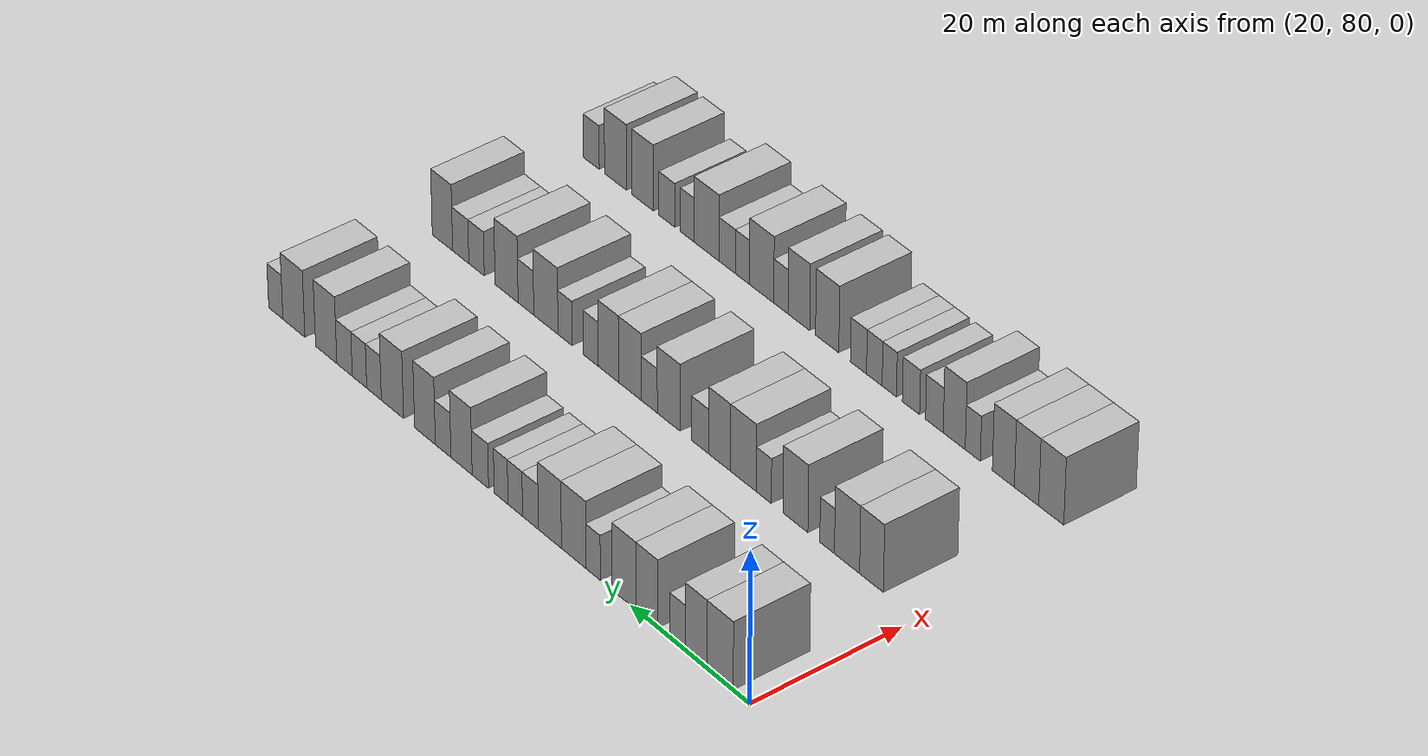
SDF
<sdf version="1.6">
 <world name="default">
  <model name="building_82">
   <static>1</static>
   <pose>25.0000 84.9619 0 0.000000 0.000000 0.000000</pose>
   <link name="link">
    <pose>0 0 4.50 0 0 0</pose>
    <collision name="collision"><geometry><box><size>10.0000 4.3811 9.0000</size></box></geometry></collision>
    <visual name="visual">
     <cast_shadows>0</cast_shadows>
     <geometry><box><size>10.0000 4.3811 9.0000</size></box></geometry>
     <material>
      <script>
       <uri>model://HANNAS_wall/materials/scripts</uri>
       <uri>model://HANNAS_wall/materials/textures</uri>
       <name>vrc/HANNAS_wall</name>
      </script>
     </material>
    </visual>
   </link>
  </model>
  <model name="building_83">
   <static>1</static>
   <pose>25.0000 88.9683 0 0.000000 0.000000 0.000000</pose>
   <link name="link">
    <pose>0 0 4.50 0 0 0</pose>
    <collision name="collision"><geometry><box><size>10.0000 3.6317 9.0000</size></box></geometry></collision>
    <visual name="visual">
     <cast_shadows>0</cast_shadows>
     <geometry><box><size>10.0000 3.6317 9.0000</size></box></geometry>
     <material>
      <script>
       <uri>model://HANNAS_wall/materials/scripts</uri>
       <uri>model://HANNAS_wall/materials/textures</uri>
       <name>vrc/HANNAS_wall</name>
      </script>
     </material>
    </visual>
   </link>
  </model>
  <model name="building_84">
   <static>1</static>
   <pose>25.0000 92.0663 0 0.000000 0.000000 0.000000</pose>
   <link name="link">
    <pose>0 0 3.00 0 0 0</pose>
    <collision name="collision"><geometry><box><size>10.0000 2.5644 6.0000</size></box></geometry></collision>
    <visual name="visual">
     <cast_shadows>0</cast_shadows>
     <geometry><box><size>10.0000 2.5644 6.0000</size></box></geometry>
     <material>
      <script>
       <uri>model://HANNAS_wall/materials/scripts</uri>
       <uri>model://HANNAS_wall/materials/textures</uri>
       <name>vrc/HANNAS_wall</name>
      </script>
     </material>
    </visual>
   </link>
  </model>
  <model name="building_85">
   <static>1</static>
   <pose>25.0000 97.2044 0 0.000000 0.000000 0.000000</pose>
   <link name="link">
    <pose>0 0 4.50 0 0 0</pose>
    <collision name="collision"><geometry><box><size>10.0000 3.7118 9.0000</size></box></geometry></collision>
    <visual name="visual">
     <cast_shadows>0</cast_shadows>
     <geometry><box><size>10.0000 3.7118 9.0000</size></box></geometry>
     <material>
      <script>
       <uri>model://HANNAS_wall/materials/scripts</uri>
       <uri>model://HANNAS_wall/materials/textures</uri>
       <name>vrc/HANNAS_wall</name>
      </script>
     </material>
    </visual>
   </link>
  </model>
  <model name="building_86">
   <static>1</static>
   <pose>25.0000 101.1151 0 0.000000 0.000000 0.000000</pose>
   <link name="link">
    <pose>0 0 4.50 0 0 0</pose>
    <collision name="collision"><geometry><box><size>10.0000 4.1097 9.0000</size></box></geometry></collision>
    <visual name="visual">
     <cast_shadows>0</cast_shadows>
     <geometry><box><size>10.0000 4.1097 9.0000</size></box></geometry>
     <material>
      <script>
       <uri>model://HANNAS_wall/materials/scripts</uri>
       <uri>model://HANNAS_wall/materials/textures</uri>
       <name>vrc/HANNAS_wall</name>
      </script>
     </material>
    </visual>
   </link>
  </model>
  <model name="building_87">
   <static>1</static>
   <pose>25.0000 106.3921 0 0.000000 0.000000 0.000000</pose>
   <link name="link">
    <pose>0 0 3.00 0 0 0</pose>
    <collision name="collision"><geometry><box><size>10.0000 2.4443 6.0000</size></box></geometry></collision>
    <visual name="visual">
     <cast_shadows>0</cast_shadows>
     <geometry><box><size>10.0000 2.4443 6.0000</size></box></geometry>
     <material>
      <script>
       <uri>model://HANNAS_wall/materials/scripts</uri>
       <uri>model://HANNAS_wall/materials/textures</uri>
       <name>vrc/HANNAS_wall</name>
      </script>
     </material>
    </visual>
   </link>
  </model>
  <model name="building_88">
   <static>1</static>
   <pose>25.0000 109.7553 0 0.000000 0.000000 0.000000</pose>
   <link name="link">
    <pose>0 0 4.50 0 0 0</pose>
    <collision name="collision"><geometry><box><size>10.0000 4.2820 9.0000</size></box></geometry></collision>
    <visual name="visual">
     <cast_shadows>0</cast_shadows>
     <geometry><box><size>10.0000 4.2820 9.0000</size></box></geometry>
     <material>
      <script>
       <uri>model://HANNAS_wall/materials/scripts</uri>
       <uri>model://HANNAS_wall/materials/textures</uri>
       <name>vrc/HANNAS_wall</name>
      </script>
     </material>
    </visual>
   </link>
  </model>
  <model name="building_89">
   <static>1</static>
   <pose>25.0000 113.9008 0 0.000000 0.000000 0.000000</pose>
   <link name="link">
    <pose>0 0 4.50 0 0 0</pose>
    <collision name="collision"><geometry><box><size>10.0000 4.0090 9.0000</size></box></geometry></collision>
    <visual name="visual">
     <cast_shadows>0</cast_shadows>
     <geometry><box><size>10.0000 4.0090 9.0000</size></box></geometry>
     <material>
      <script>
       <uri>model://HANNAS_wall/materials/scripts</uri>
       <uri>model://HANNAS_wall/materials/textures</uri>
       <name>vrc/HANNAS_wall</name>
      </script>
     </material>
    </visual>
   </link>
  </model>
  <model name="building_90">
   <static>1</static>
   <pose>25.0000 117.2914 0 0.000000 0.000000 0.000000</pose>
   <link name="link">
    <pose>0 0 3.00 0 0 0</pose>
    <collision name="collision"><geometry><box><size>10.0000 2.7720 6.0000</size></box></geometry></collision>
    <visual name="visual">
     <cast_shadows>0</cast_shadows>
     <geometry><box><size>10.0000 2.7720 6.0000</size></box></geometry>
     <material>
      <script>
       <uri>model://HANNAS_wall/materials/scripts</uri>
       <uri>model://HANNAS_wall/materials/textures</uri>
       <name>vrc/HANNAS_wall</name>
      </script>
     </material>
    </visual>
   </link>
  </model>
  <model name="building_91">
   <static>1</static>
   <pose>25.0000 119.9658 0 0.000000 0.000000 0.000000</pose>
   <link name="link">
    <pose>0 0 3.00 0 0 0</pose>
    <collision name="collision"><geometry><box><size>10.0000 2.5768 6.0000</size></box></geometry></collision>
    <visual name="visual">
     <cast_shadows>0</cast_shadows>
     <geometry><box><size>10.0000 2.5768 6.0000</size></box></geometry>
     <material>
      <script>
       <uri>model://HANNAS_wall/materials/scripts</uri>
       <uri>model://HANNAS_wall/materials/textures</uri>
       <name>vrc/HANNAS_wall</name>
      </script>
     </material>
    </visual>
   </link>
  </model>
  <model name="building_92">
   <static>1</static>
   <pose>25.0000 122.4704 0 0.000000 0.000000 0.000000</pose>
   <link name="link">
    <pose>0 0 3.00 0 0 0</pose>
    <collision name="collision"><geometry><box><size>10.0000 2.4324 6.0000</size></box></geometry></collision>
    <visual name="visual">
     <cast_shadows>0</cast_shadows>
     <geometry><box><size>10.0000 2.4324 6.0000</size></box></geometry>
     <material>
      <script>
       <uri>model://HANNAS_wall/materials/scripts</uri>
       <uri>model://HANNAS_wall/materials/textures</uri>
       <name>vrc/HANNAS_wall</name>
      </script>
     </material>
    </visual>
   </link>
  </model>
  <model name="building_93">
   <static>1</static>
   <pose>25.0000 126.1448 0 0.000000 0.000000 0.000000</pose>
   <link name="link">
    <pose>0 0 3.00 0 0 0</pose>
    <collision name="collision"><geometry><box><size>10.0000 2.9164 6.0000</size></box></geometry></collision>
    <visual name="visual">
     <cast_shadows>0</cast_shadows>
     <geometry><box><size>10.0000 2.9164 6.0000</size></box></geometry>
     <material>
      <script>
       <uri>model://HANNAS_wall/materials/scripts</uri>
       <uri>model://HANNAS_wall/materials/textures</uri>
       <name>vrc/HANNAS_wall</name>
      </script>
     </material>
    </visual>
   </link>
  </model>
  <model name="building_94">
   <static>1</static>
   <pose>25.0000 129.4947 0 0.000000 0.000000 0.000000</pose>
   <link name="link">
    <pose>0 0 4.50 0 0 0</pose>
    <collision name="collision"><geometry><box><size>10.0000 3.7833 9.0000</size></box></geometry></collision>
    <visual name="visual">
     <cast_shadows>0</cast_shadows>
     <geometry><box><size>10.0000 3.7833 9.0000</size></box></geometry>
     <material>
      <script>
       <uri>model://HANNAS_wall/materials/scripts</uri>
       <uri>model://HANNAS_wall/materials/textures</uri>
       <name>vrc/HANNAS_wall</name>
      </script>
     </material>
    </visual>
   </link>
  </model>
  <model name="building_95">
   <static>1</static>
   <pose>25.0000 132.7863 0 0.000000 0.000000 0.000000</pose>
   <link name="link">
    <pose>0 0 3.00 0 0 0</pose>
    <collision name="collision"><geometry><box><size>10.0000 2.8001 6.0000</size></box></geometry></collision>
    <visual name="visual">
     <cast_shadows>0</cast_shadows>
     <geometry><box><size>10.0000 2.8001 6.0000</size></box></geometry>
     <material>
      <script>
       <uri>model://HANNAS_wall/materials/scripts</uri>
       <uri>model://HANNAS_wall/materials/textures</uri>
       <name>vrc/HANNAS_wall</name>
      </script>
     </material>
    </visual>
   </link>
  </model>
  <model name="building_96">
   <static>1</static>
   <pose>25.0000 136.0582 0 0.000000 0.000000 0.000000</pose>
   <link name="link">
    <pose>0 0 4.50 0 0 0</pose>
    <collision name="collision"><geometry><box><size>10.0000 3.7438 9.0000</size></box></geometry></collision>
    <visual name="visual">
     <cast_shadows>0</cast_shadows>
     <geometry><box><size>10.0000 3.7438 9.0000</size></box></geometry>
     <material>
      <script>
       <uri>model://HANNAS_wall/materials/scripts</uri>
       <uri>model://HANNAS_wall/materials/textures</uri>
       <name>vrc/HANNAS_wall</name>
      </script>
     </material>
    </visual>
   </link>
  </model>
  <model name="building_97">
   <static>1</static>
   <pose>25.0000 141.9576 0 0.000000 0.000000 0.000000</pose>
   <link name="link">
    <pose>0 0 4.50 0 0 0</pose>
    <collision name="collision"><geometry><box><size>10.0000 4.0549 9.0000</size></box></geometry></collision>
    <visual name="visual">
     <cast_shadows>0</cast_shadows>
     <geometry><box><size>10.0000 4.0549 9.0000</size></box></geometry>
     <material>
      <script>
       <uri>model://HANNAS_wall/materials/scripts</uri>
       <uri>model://HANNAS_wall/materials/textures</uri>
       <name>vrc/HANNAS_wall</name>
      </script>
     </material>
    </visual>
   </link>
  </model>
  <model name="building_98">
   <static>1</static>
   <pose>25.0000 145.3249 0 0.000000 0.000000 0.000000</pose>
   <link name="link">
    <pose>0 0 3.00 0 0 0</pose>
    <collision name="collision"><geometry><box><size>10.0000 2.6799 6.0000</size></box></geometry></collision>
    <visual name="visual">
     <cast_shadows>0</cast_shadows>
     <geometry><box><size>10.0000 2.6799 6.0000</size></box></geometry>
     <material>
      <script>
       <uri>model://HANNAS_wall/materials/scripts</uri>
       <uri>model://HANNAS_wall/materials/textures</uri>
       <name>vrc/HANNAS_wall</name>
      </script>
     </material>
    </visual>
   </link>
  </model>
  <model name="building_99">
   <static>1</static>
   <pose>25.0000 147.9921 0 0.000000 0.000000 0.000000</pose>
   <link name="link">
    <pose>0 0 3.00 0 0 0</pose>
    <collision name="collision"><geometry><box><size>10.0000 2.6544 6.0000</size></box></geometry></collision>
    <visual name="visual">
     <cast_shadows>0</cast_shadows>
     <geometry><box><size>10.0000 2.6544 6.0000</size></box></geometry>
     <material>
      <script>
       <uri>model://HANNAS_wall/materials/scripts</uri>
       <uri>model://HANNAS_wall/materials/textures</uri>
       <name>vrc/HANNAS_wall</name>
      </script>
     </material>
    </visual>
   </link>
  </model>
  <model name="building_100">
   <static>1</static>
   <pose>25.0000 150.7420 0 0.000000 0.000000 0.000000</pose>
   <link name="link">
    <pose>0 0 3.00 0 0 0</pose>
    <collision name="collision"><geometry><box><size>10.0000 2.8455 6.0000</size></box></geometry></collision>
    <visual name="visual">
     <cast_shadows>0</cast_shadows>
     <geometry><box><size>10.0000 2.8455 6.0000</size></box></geometry>
     <material>
      <script>
       <uri>model://HANNAS_wall/materials/scripts</uri>
       <uri>model://HANNAS_wall/materials/textures</uri>
       <name>vrc/HANNAS_wall</name>
      </script>
     </material>
    </visual>
   </link>
  </model>
  <model name="building_101">
   <static>1</static>
   <pose>25.0000 154.1383 0 0.000000 0.000000 0.000000</pose>
   <link name="link">
    <pose>0 0 4.50 0 0 0</pose>
    <collision name="collision"><geometry><box><size>10.0000 3.9469 9.0000</size></box></geometry></collision>
    <visual name="visual">
     <cast_shadows>0</cast_shadows>
     <geometry><box><size>10.0000 3.9469 9.0000</size></box></geometry>
     <material>
      <script>
       <uri>model://HANNAS_wall/materials/scripts</uri>
       <uri>model://HANNAS_wall/materials/textures</uri>
       <name>vrc/HANNAS_wall</name>
      </script>
     </material>
    </visual>
   </link>
  </model>
  <model name="building_102">
   <static>1</static>
   <pose>25.0000 160.1767 0 0.000000 0.000000 0.000000</pose>
   <link name="link">
    <pose>0 0 4.50 0 0 0</pose>
    <collision name="collision"><geometry><box><size>10.0000 4.1299 9.0000</size></box></geometry></collision>
    <visual name="visual">
     <cast_shadows>0</cast_shadows>
     <geometry><box><size>10.0000 4.1299 9.0000</size></box></geometry>
     <material>
      <script>
       <uri>model://HANNAS_wall/materials/scripts</uri>
       <uri>model://HANNAS_wall/materials/textures</uri>
       <name>vrc/HANNAS_wall</name>
      </script>
     </material>
    </visual>
   </link>
  </model>
  <model name="building_103">
   <static>1</static>
   <pose>25.0000 163.5694 0 0.000000 0.000000 0.000000</pose>
   <link name="link">
    <pose>0 0 3.00 0 0 0</pose>
    <collision name="collision"><geometry><box><size>10.0000 2.6556 6.0000</size></box></geometry></collision>
    <visual name="visual">
     <cast_shadows>0</cast_shadows>
     <geometry><box><size>10.0000 2.6556 6.0000</size></box></geometry>
     <material>
      <script>
       <uri>model://HANNAS_wall/materials/scripts</uri>
       <uri>model://HANNAS_wall/materials/textures</uri>
       <name>vrc/HANNAS_wall</name>
      </script>
     </material>
    </visual>
   </link>
  </model>
  <model name="building_213">
   <static>1</static>
   <pose>47.0000 87.5409 0 0.000000 0.000000 0.000000</pose>
   <link name="link">
    <pose>0 0 4.50 0 0 0</pose>
    <collision name="collision"><geometry><box><size>10.0000 3.9236 9.0000</size></box></geometry></collision>
    <visual name="visual">
     <cast_shadows>0</cast_shadows>
     <geometry><box><size>10.0000 3.9236 9.0000</size></box></geometry>
     <material>
      <script>
       <uri>model://HANNAS_wall/materials/scripts</uri>
       <uri>model://HANNAS_wall/materials/textures</uri>
       <name>vrc/HANNAS_wall</name>
      </script>
     </material>
    </visual>
   </link>
  </model>
  <model name="building_214">
   <static>1</static>
   <pose>47.0000 91.6015 0 0.000000 0.000000 0.000000</pose>
   <link name="link">
    <pose>0 0 4.50 0 0 0</pose>
    <collision name="collision"><geometry><box><size>10.0000 4.1976 9.0000</size></box></geometry></collision>
    <visual name="visual">
     <cast_shadows>0</cast_shadows>
     <geometry><box><size>10.0000 4.1976 9.0000</size></box></geometry>
     <material>
      <script>
       <uri>model://HANNAS_wall/materials/scripts</uri>
       <uri>model://HANNAS_wall/materials/textures</uri>
       <name>vrc/HANNAS_wall</name>
      </script>
     </material>
    </visual>
   </link>
  </model>
  <model name="building_215">
   <static>1</static>
   <pose>47.0000 94.9227 0 0.000000 0.000000 0.000000</pose>
   <link name="link">
    <pose>0 0 3.00 0 0 0</pose>
    <collision name="collision"><geometry><box><size>10.0000 2.4448 6.0000</size></box></geometry></collision>
    <visual name="visual">
     <cast_shadows>0</cast_shadows>
     <geometry><box><size>10.0000 2.4448 6.0000</size></box></geometry>
     <material>
      <script>
       <uri>model://HANNAS_wall/materials/scripts</uri>
       <uri>model://HANNAS_wall/materials/textures</uri>
       <name>vrc/HANNAS_wall</name>
      </script>
     </material>
    </visual>
   </link>
  </model>
  <model name="building_216">
   <static>1</static>
   <pose>47.0000 100.2419 0 0.000000 0.000000 0.000000</pose>
   <link name="link">
    <pose>0 0 4.50 0 0 0</pose>
    <collision name="collision"><geometry><box><size>10.0000 4.1937 9.0000</size></box></geometry></collision>
    <visual name="visual">
     <cast_shadows>0</cast_shadows>
     <geometry><box><size>10.0000 4.1937 9.0000</size></box></geometry>
     <material>
      <script>
       <uri>model://HANNAS_wall/materials/scripts</uri>
       <uri>model://HANNAS_wall/materials/textures</uri>
       <name>vrc/HANNAS_wall</name>
      </script>
     </material>
    </visual>
   </link>
  </model>
  <model name="building_217">
   <static>1</static>
   <pose>47.0000 105.6101 0 0.000000 0.000000 0.000000</pose>
   <link name="link">
    <pose>0 0 3.00 0 0 0</pose>
    <collision name="collision"><geometry><box><size>10.0000 2.5426 6.0000</size></box></geometry></collision>
    <visual name="visual">
     <cast_shadows>0</cast_shadows>
     <geometry><box><size>10.0000 2.5426 6.0000</size></box></geometry>
     <material>
      <script>
       <uri>model://HANNAS_wall/materials/scripts</uri>
       <uri>model://HANNAS_wall/materials/textures</uri>
       <name>vrc/HANNAS_wall</name>
      </script>
     </material>
    </visual>
   </link>
  </model>
  <model name="building_218">
   <static>1</static>
   <pose>47.0000 109.1025 0 0.000000 0.000000 0.000000</pose>
   <link name="link">
    <pose>0 0 4.50 0 0 0</pose>
    <collision name="collision"><geometry><box><size>10.0000 4.4422 9.0000</size></box></geometry></collision>
    <visual name="visual">
     <cast_shadows>0</cast_shadows>
     <geometry><box><size>10.0000 4.4422 9.0000</size></box></geometry>
     <material>
      <script>
       <uri>model://HANNAS_wall/materials/scripts</uri>
       <uri>model://HANNAS_wall/materials/textures</uri>
       <name>vrc/HANNAS_wall</name>
      </script>
     </material>
    </visual>
   </link>
  </model>
  <model name="building_219">
   <static>1</static>
   <pose>47.0000 113.1906 0 0.000000 0.000000 0.000000</pose>
   <link name="link">
    <pose>0 0 4.50 0 0 0</pose>
    <collision name="collision"><geometry><box><size>10.0000 3.7341 9.0000</size></box></geometry></collision>
    <visual name="visual">
     <cast_shadows>0</cast_shadows>
     <geometry><box><size>10.0000 3.7341 9.0000</size></box></geometry>
     <material>
      <script>
       <uri>model://HANNAS_wall/materials/scripts</uri>
       <uri>model://HANNAS_wall/materials/textures</uri>
       <name>vrc/HANNAS_wall</name>
      </script>
     </material>
    </visual>
   </link>
  </model>
  <model name="building_220">
   <static>1</static>
   <pose>47.0000 116.5393 0 0.000000 0.000000 0.000000</pose>
   <link name="link">
    <pose>0 0 3.00 0 0 0</pose>
    <collision name="collision"><geometry><box><size>10.0000 2.9634 6.0000</size></box></geometry></collision>
    <visual name="visual">
     <cast_shadows>0</cast_shadows>
     <geometry><box><size>10.0000 2.9634 6.0000</size></box></geometry>
     <material>
      <script>
       <uri>model://HANNAS_wall/materials/scripts</uri>
       <uri>model://HANNAS_wall/materials/textures</uri>
       <name>vrc/HANNAS_wall</name>
      </script>
     </material>
    </visual>
   </link>
  </model>
  <model name="building_221">
   <static>1</static>
   <pose>47.0000 122.0151 0 0.000000 0.000000 0.000000</pose>
   <link name="link">
    <pose>0 0 4.50 0 0 0</pose>
    <collision name="collision"><geometry><box><size>10.0000 3.9882 9.0000</size></box></geometry></collision>
    <visual name="visual">
     <cast_shadows>0</cast_shadows>
     <geometry><box><size>10.0000 3.9882 9.0000</size></box></geometry>
     <material>
      <script>
       <uri>model://HANNAS_wall/materials/scripts</uri>
       <uri>model://HANNAS_wall/materials/textures</uri>
       <name>vrc/HANNAS_wall</name>
      </script>
     </material>
    </visual>
   </link>
  </model>
  <model name="building_222">
   <static>1</static>
   <pose>47.0000 125.4188 0 0.000000 0.000000 0.000000</pose>
   <link name="link">
    <pose>0 0 3.00 0 0 0</pose>
    <collision name="collision"><geometry><box><size>10.0000 2.8193 6.0000</size></box></geometry></collision>
    <visual name="visual">
     <cast_shadows>0</cast_shadows>
     <geometry><box><size>10.0000 2.8193 6.0000</size></box></geometry>
     <material>
      <script>
       <uri>model://HANNAS_wall/materials/scripts</uri>
       <uri>model://HANNAS_wall/materials/textures</uri>
       <name>vrc/HANNAS_wall</name>
      </script>
     </material>
    </visual>
   </link>
  </model>
  <model name="building_223">
   <static>1</static>
   <pose>47.0000 128.8175 0 0.000000 0.000000 0.000000</pose>
   <link name="link">
    <pose>0 0 4.50 0 0 0</pose>
    <collision name="collision"><geometry><box><size>10.0000 3.9780 9.0000</size></box></geometry></collision>
    <visual name="visual">
     <cast_shadows>0</cast_shadows>
     <geometry><box><size>10.0000 3.9780 9.0000</size></box></geometry>
     <material>
      <script>
       <uri>model://HANNAS_wall/materials/scripts</uri>
       <uri>model://HANNAS_wall/materials/textures</uri>
       <name>vrc/HANNAS_wall</name>
      </script>
     </material>
    </visual>
   </link>
  </model>
  <model name="building_224">
   <static>1</static>
   <pose>47.0000 132.6211 0 0.000000 0.000000 0.000000</pose>
   <link name="link">
    <pose>0 0 4.50 0 0 0</pose>
    <collision name="collision"><geometry><box><size>10.0000 3.6293 9.0000</size></box></geometry></collision>
    <visual name="visual">
     <cast_shadows>0</cast_shadows>
     <geometry><box><size>10.0000 3.6293 9.0000</size></box></geometry>
     <material>
      <script>
       <uri>model://HANNAS_wall/materials/scripts</uri>
       <uri>model://HANNAS_wall/materials/textures</uri>
       <name>vrc/HANNAS_wall</name>
      </script>
     </material>
    </visual>
   </link>
  </model>
  <model name="building_225">
   <static>1</static>
   <pose>47.0000 135.7721 0 0.000000 0.000000 0.000000</pose>
   <link name="link">
    <pose>0 0 3.00 0 0 0</pose>
    <collision name="collision"><geometry><box><size>10.0000 2.6726 6.0000</size></box></geometry></collision>
    <visual name="visual">
     <cast_shadows>0</cast_shadows>
     <geometry><box><size>10.0000 2.6726 6.0000</size></box></geometry>
     <material>
      <script>
       <uri>model://HANNAS_wall/materials/scripts</uri>
       <uri>model://HANNAS_wall/materials/textures</uri>
       <name>vrc/HANNAS_wall</name>
      </script>
     </material>
    </visual>
   </link>
  </model>
  <model name="building_226">
   <static>1</static>
   <pose>47.0000 140.3790 0 0.000000 0.000000 0.000000</pose>
   <link name="link">
    <pose>0 0 3.00 0 0 0</pose>
    <collision name="collision"><geometry><box><size>10.0000 2.5411 6.0000</size></box></geometry></collision>
    <visual name="visual">
     <cast_shadows>0</cast_shadows>
     <geometry><box><size>10.0000 2.5411 6.0000</size></box></geometry>
     <material>
      <script>
       <uri>model://HANNAS_wall/materials/scripts</uri>
       <uri>model://HANNAS_wall/materials/textures</uri>
       <name>vrc/HANNAS_wall</name>
      </script>
     </material>
    </visual>
   </link>
  </model>
  <model name="building_227">
   <static>1</static>
   <pose>47.0000 143.8488 0 0.000000 0.000000 0.000000</pose>
   <link name="link">
    <pose>0 0 4.50 0 0 0</pose>
    <collision name="collision"><geometry><box><size>10.0000 4.3985 9.0000</size></box></geometry></collision>
    <visual name="visual">
     <cast_shadows>0</cast_shadows>
     <geometry><box><size>10.0000 4.3985 9.0000</size></box></geometry>
     <material>
      <script>
       <uri>model://HANNAS_wall/materials/scripts</uri>
       <uri>model://HANNAS_wall/materials/textures</uri>
       <name>vrc/HANNAS_wall</name>
      </script>
     </material>
    </visual>
   </link>
  </model>
  <model name="building_228">
   <static>1</static>
   <pose>47.0000 147.4758 0 0.000000 0.000000 0.000000</pose>
   <link name="link">
    <pose>0 0 3.00 0 0 0</pose>
    <collision name="collision"><geometry><box><size>10.0000 2.8555 6.0000</size></box></geometry></collision>
    <visual name="visual">
     <cast_shadows>0</cast_shadows>
     <geometry><box><size>10.0000 2.8555 6.0000</size></box></geometry>
     <material>
      <script>
       <uri>model://HANNAS_wall/materials/scripts</uri>
       <uri>model://HANNAS_wall/materials/textures</uri>
       <name>vrc/HANNAS_wall</name>
      </script>
     </material>
    </visual>
   </link>
  </model>
  <model name="building_229">
   <static>1</static>
   <pose>47.0000 151.0062 0 0.000000 0.000000 0.000000</pose>
   <link name="link">
    <pose>0 0 4.50 0 0 0</pose>
    <collision name="collision"><geometry><box><size>10.0000 4.2054 9.0000</size></box></geometry></collision>
    <visual name="visual">
     <cast_shadows>0</cast_shadows>
     <geometry><box><size>10.0000 4.2054 9.0000</size></box></geometry>
     <material>
      <script>
       <uri>model://HANNAS_wall/materials/scripts</uri>
       <uri>model://HANNAS_wall/materials/textures</uri>
       <name>vrc/HANNAS_wall</name>
      </script>
     </material>
    </visual>
   </link>
  </model>
  <model name="building_230">
   <static>1</static>
   <pose>47.0000 156.5320 0 0.000000 0.000000 0.000000</pose>
   <link name="link">
    <pose>0 0 3.00 0 0 0</pose>
    <collision name="collision"><geometry><box><size>10.0000 2.8462 6.0000</size></box></geometry></collision>
    <visual name="visual">
     <cast_shadows>0</cast_shadows>
     <geometry><box><size>10.0000 2.8462 6.0000</size></box></geometry>
     <material>
      <script>
       <uri>model://HANNAS_wall/materials/scripts</uri>
       <uri>model://HANNAS_wall/materials/textures</uri>
       <name>vrc/HANNAS_wall</name>
      </script>
     </material>
    </visual>
   </link>
  </model>
  <model name="building_231">
   <static>1</static>
   <pose>47.0000 159.4523 0 0.000000 0.000000 0.000000</pose>
   <link name="link">
    <pose>0 0 3.00 0 0 0</pose>
    <collision name="collision"><geometry><box><size>10.0000 2.9944 6.0000</size></box></geometry></collision>
    <visual name="visual">
     <cast_shadows>0</cast_shadows>
     <geometry><box><size>10.0000 2.9944 6.0000</size></box></geometry>
     <material>
      <script>
       <uri>model://HANNAS_wall/materials/scripts</uri>
       <uri>model://HANNAS_wall/materials/textures</uri>
       <name>vrc/HANNAS_wall</name>
      </script>
     </material>
    </visual>
   </link>
  </model>
  <model name="building_232">
   <static>1</static>
   <pose>47.0000 162.8455 0 0.000000 0.000000 0.000000</pose>
   <link name="link">
    <pose>0 0 4.50 0 0 0</pose>
    <collision name="collision"><geometry><box><size>10.0000 3.7919 9.0000</size></box></geometry></collision>
    <visual name="visual">
     <cast_shadows>0</cast_shadows>
     <geometry><box><size>10.0000 3.7919 9.0000</size></box></geometry>
     <material>
      <script>
       <uri>model://HANNAS_wall/materials/scripts</uri>
       <uri>model://HANNAS_wall/materials/textures</uri>
       <name>vrc/HANNAS_wall</name>
      </script>
     </material>
    </visual>
   </link>
  </model>
  <model name="building_341">
   <static>1</static>
   <pose>69.0000 84.6857 0 0.000000 0.000000 0.000000</pose>
   <link name="link">
    <pose>0 0 4.50 0 0 0</pose>
    <collision name="collision"><geometry><box><size>10.0000 4.1005 9.0000</size></box></geometry></collision>
    <visual name="visual">
     <cast_shadows>0</cast_shadows>
     <geometry><box><size>10.0000 4.1005 9.0000</size></box></geometry>
     <material>
      <script>
       <uri>model://HANNAS_wall/materials/scripts</uri>
       <uri>model://HANNAS_wall/materials/textures</uri>
       <name>vrc/HANNAS_wall</name>
      </script>
     </material>
    </visual>
   </link>
  </model>
  <model name="building_342">
   <static>1</static>
   <pose>69.0000 88.7366 0 0.000000 0.000000 0.000000</pose>
   <link name="link">
    <pose>0 0 4.50 0 0 0</pose>
    <collision name="collision"><geometry><box><size>10.0000 4.0013 9.0000</size></box></geometry></collision>
    <visual name="visual">
     <cast_shadows>0</cast_shadows>
     <geometry><box><size>10.0000 4.0013 9.0000</size></box></geometry>
     <material>
      <script>
       <uri>model://HANNAS_wall/materials/scripts</uri>
       <uri>model://HANNAS_wall/materials/textures</uri>
       <name>vrc/HANNAS_wall</name>
      </script>
     </material>
    </visual>
   </link>
  </model>
  <model name="building_343">
   <static>1</static>
   <pose>69.0000 92.5595 0 0.000000 0.000000 0.000000</pose>
   <link name="link">
    <pose>0 0 4.50 0 0 0</pose>
    <collision name="collision"><geometry><box><size>10.0000 3.6446 9.0000</size></box></geometry></collision>
    <visual name="visual">
     <cast_shadows>0</cast_shadows>
     <geometry><box><size>10.0000 3.6446 9.0000</size></box></geometry>
     <material>
      <script>
       <uri>model://HANNAS_wall/materials/scripts</uri>
       <uri>model://HANNAS_wall/materials/textures</uri>
       <name>vrc/HANNAS_wall</name>
      </script>
     </material>
    </visual>
   </link>
  </model>
  <model name="building_344">
   <static>1</static>
   <pose>69.0000 97.6370 0 0.000000 0.000000 0.000000</pose>
   <link name="link">
    <pose>0 0 3.00 0 0 0</pose>
    <collision name="collision"><geometry><box><size>10.0000 2.5103 6.0000</size></box></geometry></collision>
    <visual name="visual">
     <cast_shadows>0</cast_shadows>
     <geometry><box><size>10.0000 2.5103 6.0000</size></box></geometry>
     <material>
      <script>
       <uri>model://HANNAS_wall/materials/scripts</uri>
       <uri>model://HANNAS_wall/materials/textures</uri>
       <name>vrc/HANNAS_wall</name>
      </script>
     </material>
    </visual>
   </link>
  </model>
  <model name="building_345">
   <static>1</static>
   <pose>69.0000 100.7443 0 0.000000 0.000000 0.000000</pose>
   <link name="link">
    <pose>0 0 4.50 0 0 0</pose>
    <collision name="collision"><geometry><box><size>10.0000 3.7043 9.0000</size></box></geometry></collision>
    <visual name="visual">
     <cast_shadows>0</cast_shadows>
     <geometry><box><size>10.0000 3.7043 9.0000</size></box></geometry>
     <material>
      <script>
       <uri>model://HANNAS_wall/materials/scripts</uri>
       <uri>model://HANNAS_wall/materials/textures</uri>
       <name>vrc/HANNAS_wall</name>
      </script>
     </material>
    </visual>
   </link>
  </model>
  <model name="building_346">
   <static>1</static>
   <pose>69.0000 104.0816 0 0.000000 0.000000 0.000000</pose>
   <link name="link">
    <pose>0 0 3.00 0 0 0</pose>
    <collision name="collision"><geometry><box><size>10.0000 2.9702 6.0000</size></box></geometry></collision>
    <visual name="visual">
     <cast_shadows>0</cast_shadows>
     <geometry><box><size>10.0000 2.9702 6.0000</size></box></geometry>
     <material>
      <script>
       <uri>model://HANNAS_wall/materials/scripts</uri>
       <uri>model://HANNAS_wall/materials/textures</uri>
       <name>vrc/HANNAS_wall</name>
      </script>
     </material>
    </visual>
   </link>
  </model>
  <model name="building_347">
   <static>1</static>
   <pose>69.0000 108.0319 0 0.000000 0.000000 0.000000</pose>
   <link name="link">
    <pose>0 0 3.00 0 0 0</pose>
    <collision name="collision"><geometry><box><size>10.0000 2.9304 6.0000</size></box></geometry></collision>
    <visual name="visual">
     <cast_shadows>0</cast_shadows>
     <geometry><box><size>10.0000 2.9304 6.0000</size></box></geometry>
     <material>
      <script>
       <uri>model://HANNAS_wall/materials/scripts</uri>
       <uri>model://HANNAS_wall/materials/textures</uri>
       <name>vrc/HANNAS_wall</name>
      </script>
     </material>
    </visual>
   </link>
  </model>
  <model name="building_348">
   <static>1</static>
   <pose>69.0000 111.7191 0 0.000000 0.000000 0.000000</pose>
   <link name="link">
    <pose>0 0 3.00 0 0 0</pose>
    <collision name="collision"><geometry><box><size>10.0000 2.4441 6.0000</size></box></geometry></collision>
    <visual name="visual">
     <cast_shadows>0</cast_shadows>
     <geometry><box><size>10.0000 2.4441 6.0000</size></box></geometry>
     <material>
      <script>
       <uri>model://HANNAS_wall/materials/scripts</uri>
       <uri>model://HANNAS_wall/materials/textures</uri>
       <name>vrc/HANNAS_wall</name>
      </script>
     </material>
    </visual>
   </link>
  </model>
  <model name="building_349">
   <static>1</static>
   <pose>69.0000 114.2751 0 0.000000 0.000000 0.000000</pose>
   <link name="link">
    <pose>0 0 3.00 0 0 0</pose>
    <collision name="collision"><geometry><box><size>10.0000 2.6677 6.0000</size></box></geometry></collision>
    <visual name="visual">
     <cast_shadows>0</cast_shadows>
     <geometry><box><size>10.0000 2.6677 6.0000</size></box></geometry>
     <material>
      <script>
       <uri>model://HANNAS_wall/materials/scripts</uri>
       <uri>model://HANNAS_wall/materials/textures</uri>
       <name>vrc/HANNAS_wall</name>
      </script>
     </material>
    </visual>
   </link>
  </model>
  <model name="building_350">
   <static>1</static>
   <pose>69.0000 116.9978 0 0.000000 0.000000 0.000000</pose>
   <link name="link">
    <pose>0 0 3.00 0 0 0</pose>
    <collision name="collision"><geometry><box><size>10.0000 2.7777 6.0000</size></box></geometry></collision>
    <visual name="visual">
     <cast_shadows>0</cast_shadows>
     <geometry><box><size>10.0000 2.7777 6.0000</size></box></geometry>
     <material>
      <script>
       <uri>model://HANNAS_wall/materials/scripts</uri>
       <uri>model://HANNAS_wall/materials/textures</uri>
       <name>vrc/HANNAS_wall</name>
      </script>
     </material>
    </visual>
   </link>
  </model>
  <model name="building_351">
   <static>1</static>
   <pose>69.0000 122.4061 0 0.000000 0.000000 0.000000</pose>
   <link name="link">
    <pose>0 0 4.50 0 0 0</pose>
    <collision name="collision"><geometry><box><size>10.0000 4.0390 9.0000</size></box></geometry></collision>
    <visual name="visual">
     <cast_shadows>0</cast_shadows>
     <geometry><box><size>10.0000 4.0390 9.0000</size></box></geometry>
     <material>
      <script>
       <uri>model://HANNAS_wall/materials/scripts</uri>
       <uri>model://HANNAS_wall/materials/textures</uri>
       <name>vrc/HANNAS_wall</name>
      </script>
     </material>
    </visual>
   </link>
  </model>
  <model name="building_352">
   <static>1</static>
   <pose>69.0000 127.3265 0 0.000000 0.000000 0.000000</pose>
   <link name="link">
    <pose>0 0 4.50 0 0 0</pose>
    <collision name="collision"><geometry><box><size>10.0000 3.8018 9.0000</size></box></geometry></collision>
    <visual name="visual">
     <cast_shadows>0</cast_shadows>
     <geometry><box><size>10.0000 3.8018 9.0000</size></box></geometry>
     <material>
      <script>
       <uri>model://HANNAS_wall/materials/scripts</uri>
       <uri>model://HANNAS_wall/materials/textures</uri>
       <name>vrc/HANNAS_wall</name>
      </script>
     </material>
    </visual>
   </link>
  </model>
  <model name="building_353">
   <static>1</static>
   <pose>69.0000 130.4786 0 0.000000 0.000000 0.000000</pose>
   <link name="link">
    <pose>0 0 3.00 0 0 0</pose>
    <collision name="collision"><geometry><box><size>10.0000 2.5025 6.0000</size></box></geometry></collision>
    <visual name="visual">
     <cast_shadows>0</cast_shadows>
     <geometry><box><size>10.0000 2.5025 6.0000</size></box></geometry>
     <material>
      <script>
       <uri>model://HANNAS_wall/materials/scripts</uri>
       <uri>model://HANNAS_wall/materials/textures</uri>
       <name>vrc/HANNAS_wall</name>
      </script>
     </material>
    </visual>
   </link>
  </model>
  <model name="building_354">
   <static>1</static>
   <pose>69.0000 133.8691 0 0.000000 0.000000 0.000000</pose>
   <link name="link">
    <pose>0 0 4.50 0 0 0</pose>
    <collision name="collision"><geometry><box><size>10.0000 4.2785 9.0000</size></box></geometry></collision>
    <visual name="visual">
     <cast_shadows>0</cast_shadows>
     <geometry><box><size>10.0000 4.2785 9.0000</size></box></geometry>
     <material>
      <script>
       <uri>model://HANNAS_wall/materials/scripts</uri>
       <uri>model://HANNAS_wall/materials/textures</uri>
       <name>vrc/HANNAS_wall</name>
      </script>
     </material>
    </visual>
   </link>
  </model>
  <model name="building_355">
   <static>1</static>
   <pose>69.0000 137.2723 0 0.000000 0.000000 0.000000</pose>
   <link name="link">
    <pose>0 0 3.00 0 0 0</pose>
    <collision name="collision"><geometry><box><size>10.0000 2.5280 6.0000</size></box></geometry></collision>
    <visual name="visual">
     <cast_shadows>0</cast_shadows>
     <geometry><box><size>10.0000 2.5280 6.0000</size></box></geometry>
     <material>
      <script>
       <uri>model://HANNAS_wall/materials/scripts</uri>
       <uri>model://HANNAS_wall/materials/textures</uri>
       <name>vrc/HANNAS_wall</name>
      </script>
     </material>
    </visual>
   </link>
  </model>
  <model name="building_356">
   <static>1</static>
   <pose>69.0000 139.9864 0 0.000000 0.000000 0.000000</pose>
   <link name="link">
    <pose>0 0 3.00 0 0 0</pose>
    <collision name="collision"><geometry><box><size>10.0000 2.9003 6.0000</size></box></geometry></collision>
    <visual name="visual">
     <cast_shadows>0</cast_shadows>
     <geometry><box><size>10.0000 2.9003 6.0000</size></box></geometry>
     <material>
      <script>
       <uri>model://HANNAS_wall/materials/scripts</uri>
       <uri>model://HANNAS_wall/materials/textures</uri>
       <name>vrc/HANNAS_wall</name>
      </script>
     </material>
    </visual>
   </link>
  </model>
  <model name="building_357">
   <static>1</static>
   <pose>69.0000 143.6530 0 0.000000 0.000000 0.000000</pose>
   <link name="link">
    <pose>0 0 4.50 0 0 0</pose>
    <collision name="collision"><geometry><box><size>10.0000 4.4329 9.0000</size></box></geometry></collision>
    <visual name="visual">
     <cast_shadows>0</cast_shadows>
     <geometry><box><size>10.0000 4.4329 9.0000</size></box></geometry>
     <material>
      <script>
       <uri>model://HANNAS_wall/materials/scripts</uri>
       <uri>model://HANNAS_wall/materials/textures</uri>
       <name>vrc/HANNAS_wall</name>
      </script>
     </material>
    </visual>
   </link>
  </model>
  <model name="building_358">
   <static>1</static>
   <pose>69.0000 147.1118 0 0.000000 0.000000 0.000000</pose>
   <link name="link">
    <pose>0 0 3.00 0 0 0</pose>
    <collision name="collision"><geometry><box><size>10.0000 2.4848 6.0000</size></box></geometry></collision>
    <visual name="visual">
     <cast_shadows>0</cast_shadows>
     <geometry><box><size>10.0000 2.4848 6.0000</size></box></geometry>
     <material>
      <script>
       <uri>model://HANNAS_wall/materials/scripts</uri>
       <uri>model://HANNAS_wall/materials/textures</uri>
       <name>vrc/HANNAS_wall</name>
      </script>
     </material>
    </visual>
   </link>
  </model>
  <model name="building_359">
   <static>1</static>
   <pose>69.0000 150.8022 0 0.000000 0.000000 0.000000</pose>
   <link name="link">
    <pose>0 0 3.00 0 0 0</pose>
    <collision name="collision"><geometry><box><size>10.0000 2.8961 6.0000</size></box></geometry></collision>
    <visual name="visual">
     <cast_shadows>0</cast_shadows>
     <geometry><box><size>10.0000 2.8961 6.0000</size></box></geometry>
     <material>
      <script>
       <uri>model://HANNAS_wall/materials/scripts</uri>
       <uri>model://HANNAS_wall/materials/textures</uri>
       <name>vrc/HANNAS_wall</name>
      </script>
     </material>
    </visual>
   </link>
  </model>
  <model name="building_360">
   <static>1</static>
   <pose>69.0000 155.1990 0 0.000000 0.000000 0.000000</pose>
   <link name="link">
    <pose>0 0 4.50 0 0 0</pose>
    <collision name="collision"><geometry><box><size>10.0000 3.8975 9.0000</size></box></geometry></collision>
    <visual name="visual">
     <cast_shadows>0</cast_shadows>
     <geometry><box><size>10.0000 3.8975 9.0000</size></box></geometry>
     <material>
      <script>
       <uri>model://HANNAS_wall/materials/scripts</uri>
       <uri>model://HANNAS_wall/materials/textures</uri>
       <name>vrc/HANNAS_wall</name>
      </script>
     </material>
    </visual>
   </link>
  </model>
  <model name="building_361">
   <static>1</static>
   <pose>69.0000 160.1619 0 0.000000 0.000000 0.000000</pose>
   <link name="link">
    <pose>0 0 4.50 0 0 0</pose>
    <collision name="collision"><geometry><box><size>10.0000 4.0282 9.0000</size></box></geometry></collision>
    <visual name="visual">
     <cast_shadows>0</cast_shadows>
     <geometry><box><size>10.0000 4.0282 9.0000</size></box></geometry>
     <material>
      <script>
       <uri>model://HANNAS_wall/materials/scripts</uri>
       <uri>model://HANNAS_wall/materials/textures</uri>
       <name>vrc/HANNAS_wall</name>
      </script>
     </material>
    </visual>
   </link>
  </model>
  <model name="building_362">
   <static>1</static>
   <pose>69.0000 164.6440 0 0.000000 0.000000 0.000000</pose>
   <link name="link">
    <pose>0 0 3.00 0 0 0</pose>
    <collision name="collision"><geometry><box><size>10.0000 2.9360 6.0000</size></box></geometry></collision>
    <visual name="visual">
     <cast_shadows>0</cast_shadows>
     <geometry><box><size>10.0000 2.9360 6.0000</size></box></geometry>
     <material>
      <script>
       <uri>model://HANNAS_wall/materials/scripts</uri>
       <uri>model://HANNAS_wall/materials/textures</uri>
       <name>vrc/HANNAS_wall</name>
      </script>
     </material>
    </visual>
   </link>
  </model>
 </world>
</sdf>
